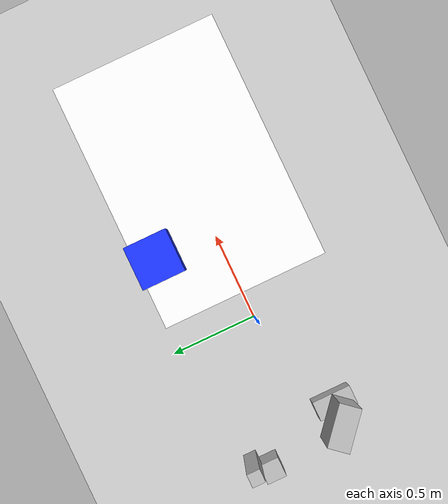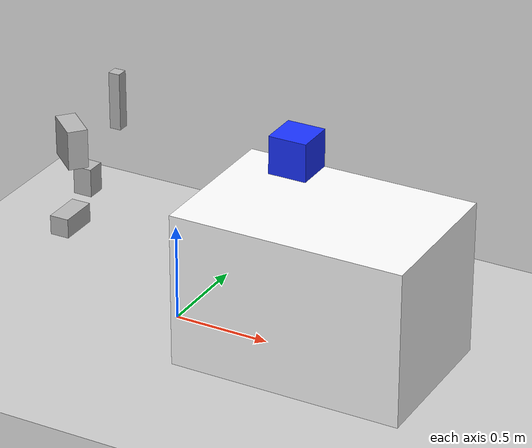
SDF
<sdf version="1.8">
 <world name="camera_world">
  <plugin filename="ignition-gazebo-physics-system" name="ignition::gazebo::systems::Physics"/>
  <plugin filename="ignition-gazebo-user-commands-system" name="ignition::gazebo::systems::UserCommands"/>
  <plugin filename="ignition-gazebo-scene-broadcaster-system" name="ignition::gazebo::systems::SceneBroadcaster"/>
  <plugin filename="ignition-gazebo-sensors-system" name="ignition::gazebo::systems::Sensors">
   <render_engine>ogre2</render_engine>
  </plugin>
  <ambient>0.3 0.3 0.3 1</ambient>
  <background>0.8 0.9 1 1</background>
  <light type="directional" name="sun">
   <pose>0 0 10 0 0 0</pose>
   <diffuse>1 1 1 1</diffuse>
   <specular>1 1 1 1</specular>
   <direction>-0.5 0.5 -1</direction>
  </light>
  <model name="ground_plane">
   <static>true</static>
   <link name="link">
    <collision name="collision"><geometry><plane><normal>0 0 1</normal></plane></geometry></collision>
    <visual name="visual">
     <geometry><plane><normal>0 0 1</normal><size>100 100</size></plane></geometry>
     <material><ambient>1.0 1.0 1.0 1</ambient><diffuse>0.8 0.8 0.8 1</diffuse></material>
    </visual>
   </link>
  </model>
  <model name="shelf_box_1">
   <static>true</static>
   <pose>-0.66 0.25 0.5 0 0 0</pose>
   <link name="link">
    <collision name="collision"><geometry><box><size>0.1 0.1 0.15</size></box></geometry></collision>
    <visual name="visual"><geometry><box><size>0.1 0.1 0.15</size></box></geometry></visual>
   </link>
  </model>
  <model name="shelf_box_2">
   <static>true</static>
   <pose>-0.5 -0.165 0.5 0 0 0</pose>
   <link name="link">
    <collision name="collision"><geometry><box><size>0.1 0.2 0.1</size></box></geometry></collision>
    <visual name="visual"><geometry><box><size>0.1 0.2 0.1</size></box></geometry></visual>
   </link>
  </model>
  <model name="shelf_box_3">
   <static>true</static>
   <pose>-0.5 -0.125 0.9 0 0 0.86</pose>
   <link name="link">
    <collision name="collision"><geometry><box><size>0.1 0.2 0.2</size></box></geometry></collision>
    <visual name="visual"><geometry><box><size>0.1 0.2 0.2</size></box></geometry></visual>
   </link>
  </model>
  <model name="shelf_box_4">
   <static>true</static>
   <pose>-0.5 0.3 0.95 0 0 0</pose>
   <link name="link">
    <collision name="collision"><geometry><box><size>0.06 0.06 0.3</size></box></geometry></collision>
    <visual name="visual"><geometry><box><size>0.06 0.06 0.3</size></box></geometry></visual>
   </link>
  </model>
  <model name="desk">
   <static>true</static>
   <pose>0.8 0 0.4 0 0 0</pose>
   <link name="desk_link">
    <collision name="collision"><geometry><box><size>1.2 0.8 0.8</size></box></geometry></collision>
    <visual name="visual">
     <geometry><box><size>1.2 0.8 0.8</size></box></geometry>
     <material><ambient>1 1 1 1</ambient><diffuse>1 1 1 1</diffuse></material>
    </visual>
   </link>
  </model>
  <model name="box">
   <static>false</static>
   <pose>0.5 0.3 0.9 0 0 0</pose>
   <link name="box_link">
    <collision name="collision"><geometry><box><size>0.2 0.2 0.2</size></box></geometry></collision>
    <visual name="visual">
     <geometry><box><size>0.2 0.2 0.2</size></box></geometry>
     <material><ambient>0.1 0.2 1 1</ambient><diffuse>0.1 0.2 1 1</diffuse></material>
    </visual>
   </link>
  </model>
 </world>
</sdf>
